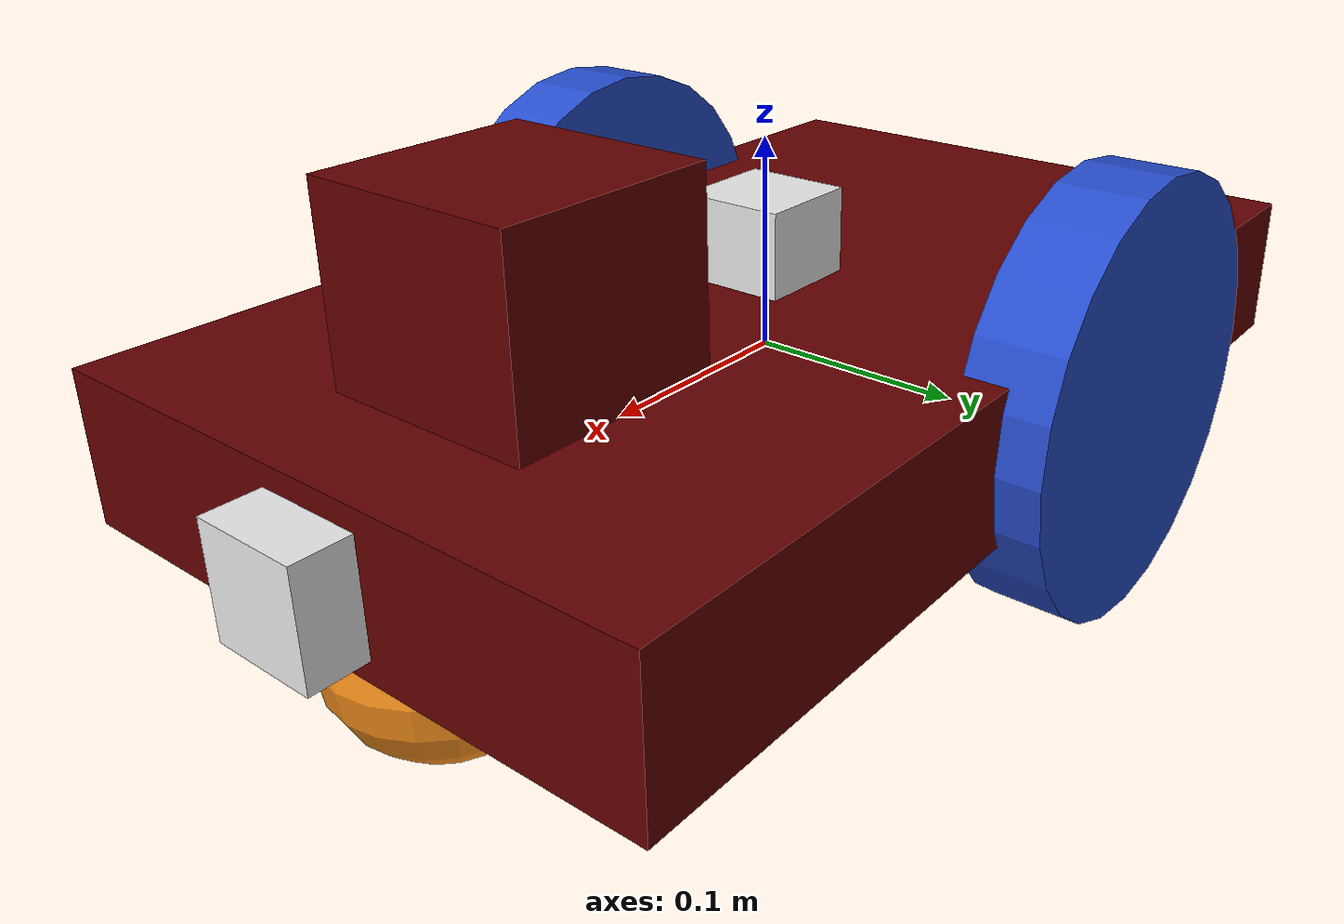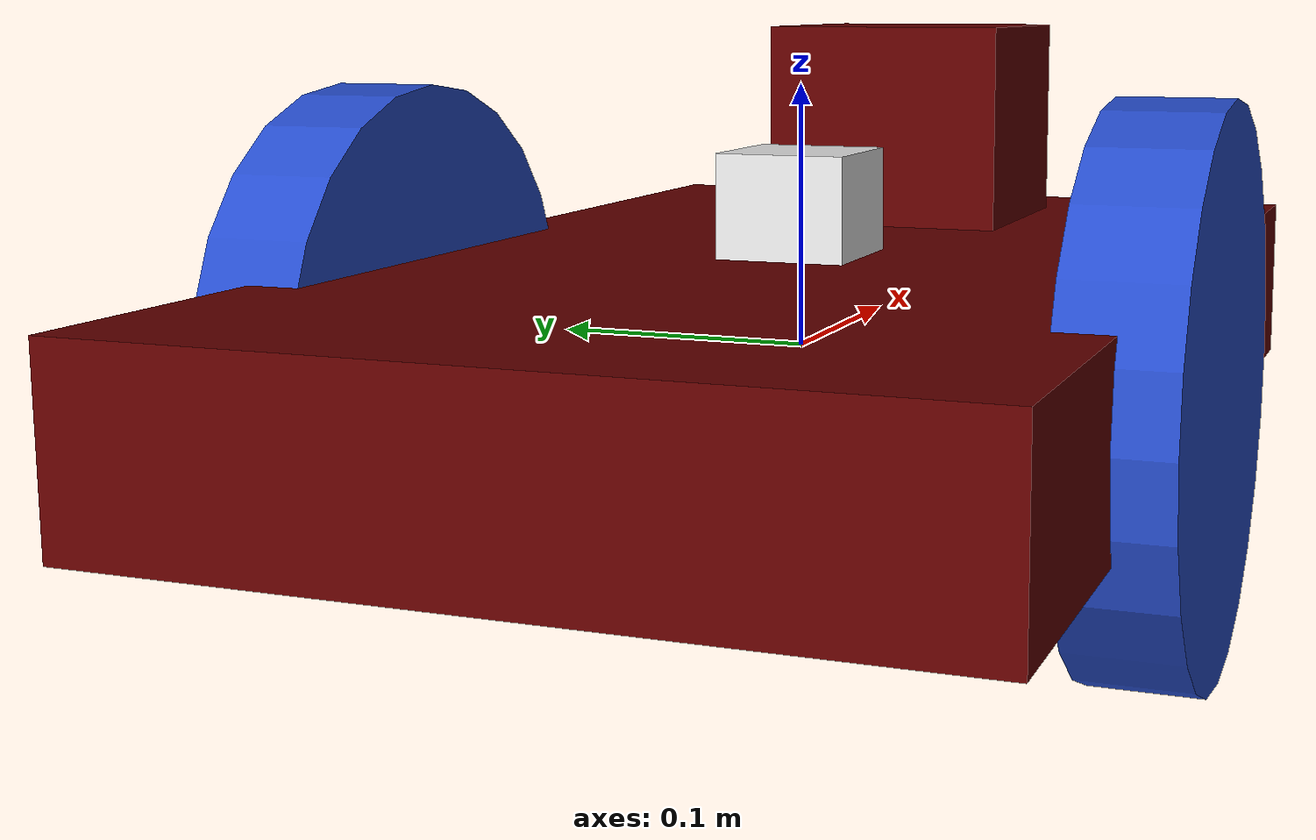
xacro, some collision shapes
<?xml version="1.0" ?>
<robot name="k2wr" xmlns:xacro="http://www.ros.org/wiki/xacro">

  <xacro:include filename="$(find k2wr_description)/urdf/k2wr.gazebo"/>
  <xacro:include filename="$(find k2wr_description)/urdf/macros.xacro"/>
  <xacro:include filename="$(find k2wr_description)/urdf/materials.xacro"/>

  <link name="base_link"></link>

 <joint name="joint_base" type="fixed">
    <parent link="base_link"/>
    <child link="link_chassis"/>
  </joint>

  <link name="link_chassis">
    <!-- pose and inertial -->
    <pose>0 0 0.1 0 0 0</pose>
    <inertial>
      <mass value="5"/>
      <origin rpy="0 0 0" xyz="0 0 0.1"/>
      <inertia ixx="0.0395416666667" ixy="0" ixz="0" iyy="0.106208333333" iyz="0" izz="0.106208333333"/>
    </inertial>
    <!-- body -->
    <collision name="collision_chassis">
      <geometry>
        <box size="0.5 0.3 0.07"/>
      </geometry>
    </collision>
    <visual>
      <origin rpy="0 0 0" xyz="0 0 0"/>
      <geometry>
        <box size="0.5 0.3 0.07"/>
      </geometry>
      <material name="blue"/>
    </visual>
    <!-- caster front -->
    <collision name="caster_front_collision">
      <origin rpy=" 0 0 0" xyz="0.35 0 -0.05"/>
      <geometry>
        <sphere radius="0.05"/>
      </geometry>
      <surface>
        <friction>
          <ode>
            <mu>0</mu>
            <mu2>0</mu2>
            <slip1>1.0</slip1>
            <slip2>1.0</slip2>
          </ode>
        </friction>
      </surface>
    </collision>
    <visual name="caster_front_visual">
      <origin rpy=" 0 0 0" xyz="0.2 0 -0.05"/>
      <geometry>
        <sphere radius="0.05"/>
      </geometry>
    </visual>

     <!-- caster back -->
  </link>

  <xacro:link_wheel name="link_right_wheel" />

  <xacro:joint_wheel name="joint_right_wheel" child="link_right_wheel" origin_xyz="-0.05 0.15 0" />

  <xacro:link_wheel name="link_left_wheel" />

  <xacro:joint_wheel name="joint_left_wheel" child="link_left_wheel" origin_xyz="-0.05 -0.15 0" />

<link name="camera_link">
      <inertial>
        <origin xyz="0.0 0.0 0.0" rpy="0.0 0.0 0.0"/>
        <mass value="0.1"/>
        <inertia ixx="1e-6" ixy="0.0" ixz="0.0" iyy="1e-6" iyz="0.0" izz="1e-6"/>
      </inertial>
      <visual name="">
        <origin xyz="0.0 0.0 0.0" rpy="0.0 0.0 0.0"/>
        <geometry>
          <box size="0.05 0.05 0.05"/>
        </geometry>
        <material name="white"/>
      </visual>
      <collision>
        <origin xyz="0.0 0.0 0.0" rpy="0.0 0.0 0.0"/>
        <geometry>
          <box size="0.05 0.05 0.05"/>
        </geometry>
      </collision>

  </link>

  <joint name="camera_joint" type="fixed">
    <origin xyz="0.25 0.0 0.0" rpy="0.0 0.0 0.0"/>
    <parent link="link_chassis"/>
    <child link="camera_link"/>
    <axis xyz="0.0 1 0.0"/>
  </joint>

  <joint name="camera_optical_joint" type="fixed">
    <origin xyz="0 0 0" rpy="-1.5707 0 -1.5707"/>
    <parent link="camera_link"/>
    <child link="camera_link_optical"/>
  </joint>

  <link name="camera_link_optical">
  </link>

<link name="hokuyo">
      <inertial>
        <origin xyz="0.0 0.0 0.0" rpy="0.0 0.0 0.0"/>
        <mass value="0.1"/>
        <inertia ixx="1e-6" ixy="0.0" ixz="0.0" iyy="1e-6" iyz="0.0" izz="1e-6"/>
      </inertial>
      <visual name="hokuyo_visual">
        <origin xyz="0.0 0.0 0.0" rpy="0.0 0.0 0.0"/>
        <geometry>
          <mesh filename="package://k2wr_description/meshes/hokuyo.dae"/>
        </geometry>
        <material name="blue">
          <color rgba="100.0 0.0 0.0 1.0"/>
        </material>
      </visual>
      <collision>
        <origin xyz="0.0 0.0 0.0" rpy="0.0 0.0 0.0"/>
        <geometry>
          <box size="0.1 0.1 0.1"/>
        </geometry>
      </collision>
    </link>

  <joint name="hokuyo_joint" type="fixed">
    <origin xyz="0.15 0.0 0.07" rpy="0.0 0.0 0.0"/>
    <parent link="link_chassis"/>
    <child link="hokuyo"/>
    <axis xyz="0.0 1 0.0"/>
  </joint>

  <link name="imu_sensor">
      <inertial>
        <origin xyz="0.0 0.0 0.0" rpy="0.0 0.0 0.0"/>
        <mass value="0.1"/>
        <inertia ixx="1e-6" ixy="0.0" ixz="0.0" iyy="1e-6" iyz="0.0" izz="1e-6"/>
      </inertial>
      <visual name="imu_sensor_visual">
        <origin xyz="0.0 0.0 0.0" rpy="0.0 0.0 0.0"/>
        <geometry>
          <box size="0.05 0.05 0.05"/>
        </geometry>
        <material name="white"/>
      </visual>
      <collision>
        <origin xyz="0.0 0.0 0.0" rpy="0.0 0.0 0.0"/>
        <geometry>
          <box size="0.05 0.05 0.05"/>
        </geometry>
      </collision>

  </link>

  <joint name="imu_sensor_joint" type="fixed">
    <origin xyz="0.0 0.0 0.05" rpy="0.0 0.0 0.0"/>
    <parent link="link_chassis"/>
    <child link="imu_sensor"/>
    <axis xyz="0.0 1 0.0"/>
  </joint>

</robot>

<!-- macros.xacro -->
<robot>

    <macro name="link_wheel" params="name">
        <link name="${name}">
            <inertial>
              <mass value="0.2"/>
              <origin rpy="0 1.5707 1.5707" xyz="0 0 0"/>
              <inertia ixx="0.000526666666667" ixy="0" ixz="0" iyy="0.000526666666667" iyz="0" izz="0.001"/>
            </inertial>
            <collision name="${name}_collision">
              <origin rpy="0 1.5707 1.5707" xyz="0 0 0"/>
              <geometry>
                <cylinder length="0.04" radius="0.1"/>
              </geometry>
            </collision>
            <visual name="${name}_visual">
              <origin rpy="0 1.5707 1.5707" xyz="0 0 0"/>
              <geometry>
                <cylinder length="0.04" radius="0.1"/>
              </geometry>
            </visual>
        </link>
    </macro>

    <macro name="joint_wheel" params="name child origin_xyz">
      <joint name="${name}" type="continuous">
        <origin rpy="0 0 0" xyz="${origin_xyz}"/>
        <child link="${child}"/>
        <parent link="link_chassis"/>
        <axis rpy="0 0 0" xyz="0 1 0"/>
        <limit effort="10000" velocity="1000"/>
        <joint_properties damping="1.0" friction="1.0"/>
      </joint>
    </macro>
</robot>
